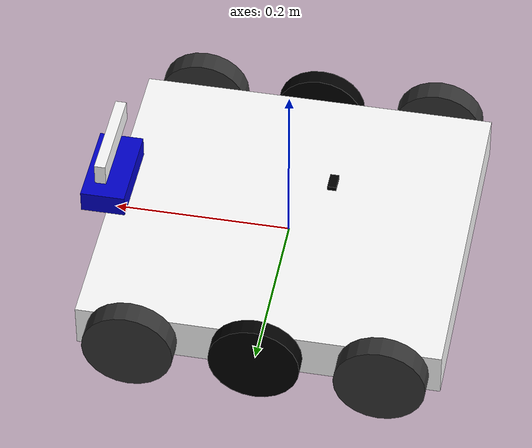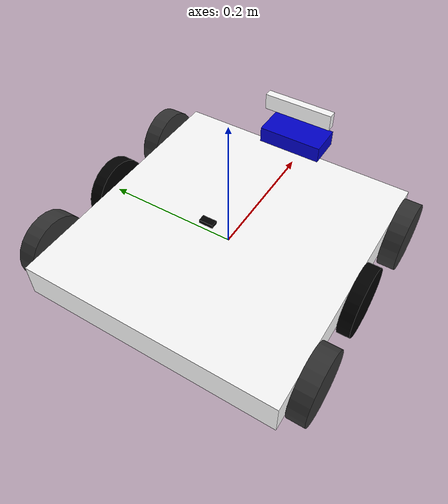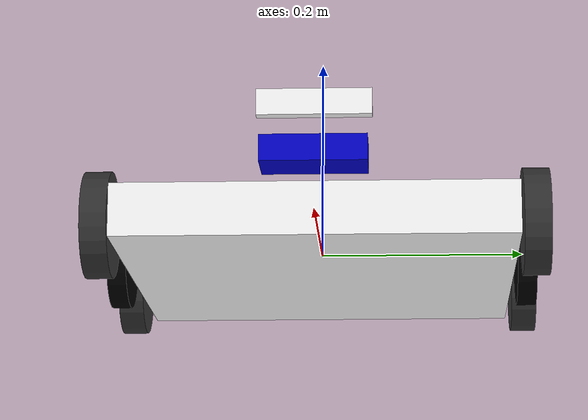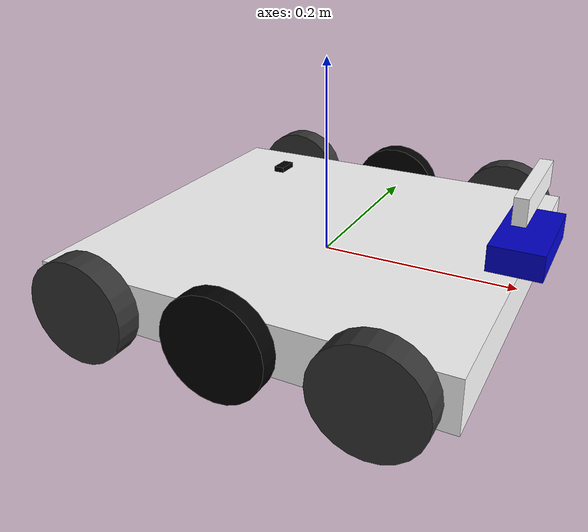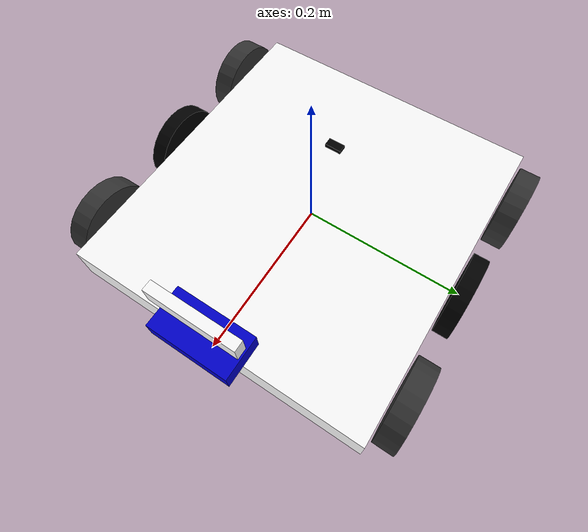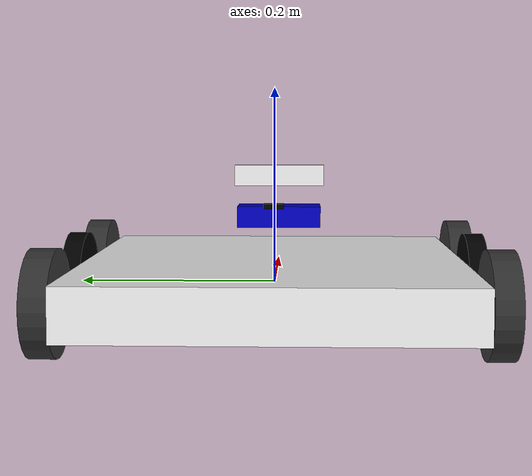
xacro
<?xml version="1.0"?>
<robot name="metrobot_base" xmlns:xacro="http://www.ros.org/wiki/xacro">

    <!-- All measurements are in meters -->

    <!-- Drive Wheels -->
    <xacro:property name="drive_wheel_radius" value="0.0508" />
    <xacro:property name="drive_wheel_mass" value="0.01"/>
    <xacro:property name="drive_wheel_thickness" value="0.01905"/>
    <xacro:property name="drive_wheel_intertia"
                    value="${1.0/12*drive_wheel_mass*
                    (3*drive_wheel_radius*drive_wheel_radius*drive_wheel_radius +
                    drive_wheel_thickness*drive_wheel_thickness)}"/>

    <!-- distance from the edge of the base to the edge of the wheel -->
    <xacro:property name="drive_wheel_base_separation" value="0.003175"/>
    <!-- signed offset from the center of base -->
    <xacro:property name="drive_wheel_offset" value="0.0"/>
    <!-- vertical offset of wheel from the center of the chassis -->
    <xacro:property name="drive_wheel_vertical_offset" value="0.0"/>

    <!-- Omni wheels -->
    <xacro:property name="omni_wheel_radius" value="0.0508"/>
    <xacro:property name="omni_wheel_thickness" value="0.0254"/>
    <xacro:property name="omni_wheel_mass" value="0.2"/>
    <xacro:property name="omni_wheel_intertia" value="${2.0/5*omni_wheel_mass*omni_wheel_radius*omni_wheel_radius}"/>

    <!-- distance from the edge of the base to the edge of the wheel -->
    <xacro:property name="omni_wheel_base_separation" value="0.003175"/>
    <!-- offset from the edges of the base -->
    <xacro:property name="omni_wheel_offset" value="0.0508"/>
    <!-- offset from the center of the base -->
    <xacro:property name="omni_wheel_vertical_offset" value="0.0001"/>

    <!-- Base Frame -->
    <xacro:property name="base_width" value="0.4064"/>
    <xacro:property name="base_length" value="0.381"/>
    <xacro:property name="base_thickness" value="0.0508"/>
    <xacro:property name="base_mass" value="5"/>

    <xacro:include filename="$(find metrobot_description)/urdf/macros.xacro" />
    <xacro:include filename="$(find metrobot_description)/urdf/metrobot_base.gazebo" />

    <link name="base_link"/>

    <!-- Add chassis and inertial link -->
    <link name="chassis">
        <interial>
            <xacro:chassis_inertial_params/>
        </interial>
        <visual>
            <xacro:chassis_geometry/>
            <material name="white" />
        </visual>
        <collision>
            <xacro:chassis_geometry/>
        </collision>
    </link>

    <joint name="base_chassis_joint" type="fixed">
        <origin xyz="${-drive_wheel_offset} 0 0" rpy="0 0 0"/>
        <parent link="base_link"/>
        <child link="chassis"/>
    </joint>

    <!-- Add in base footprint -->
    <link name="base_footprint"/>
    <joint name="base_footprint_joint" type="fixed">
        <origin xyz="0 0 ${-drive_wheel_radius+drive_wheel_vertical_offset}" rpy="0 0 0"/>
        <parent link="base_link"/>
        <child link="base_footprint"/>
    </joint>

    <!-- Add left and right wheels -->
    <link name="left_drive_wheel">
        <inertial>
            <xacro:drive_wheel_inertial_params />
        </inertial>
        <visual>
            <xacro:drive_wheel_geometry />
            <material name="black" />
        </visual>
        <collision>
            <xacro:drive_wheel_geometry />
        </collision>
    </link>

    <joint name="left_drive_wheel_joint" type="continuous">
        <origin xyz="${drive_wheel_offset}
        ${base_length/2 + drive_wheel_base_separation + drive_wheel_thickness/2}
        ${drive_wheel_vertical_offset}" rpy="1.5708 0 0" />
        <parent link="chassis" />
        <child link="left_drive_wheel" />
        <axis xyz="0 0 -1" />
        <limit effort="10" velocity="100" />
    </joint>

    <xacro:drive_wheel_transmission name="left_drive_wheel" />

    <link name="right_drive_wheel">
        <inertial>
            <xacro:drive_wheel_inertial_params />
        </inertial>
        <visual>
            <xacro:drive_wheel_geometry />
            <material name="black" />
        </visual>
        <collision>
            <xacro:drive_wheel_geometry />
        </collision>
    </link>

    <joint name="right_drive_wheel_joint" type="continuous">
        <origin xyz="${drive_wheel_offset}
        ${-1*(base_length/2 + drive_wheel_base_separation + drive_wheel_thickness/2)}
        ${drive_wheel_vertical_offset}" rpy="1.5708 0 0" />
        <parent link="chassis" />
        <child link="right_drive_wheel" />
        <axis xyz="0 0 -1" />
        <limit effort="10" velocity="100" />
    </joint>

    <xacro:drive_wheel_transmission name="right_drive_wheel" />

    <!-- Omni wheels -->
    <link name="front_left_omni_wheel">
        <inertial>
            <xacro:omni_wheel_inertial_params />
        </inertial>
        <visual>
            <xacro:omni_wheel_geometry />
            <material name="grey" />
        </visual>
        <collision>
            <xacro:omni_wheel_geometry />
        </collision>
    </link>

    <joint name="front_left_omni_wheel_joint" type="fixed">
        <origin xyz="${base_length/2 - omni_wheel_offset}
        ${base_width/2 + omni_wheel_base_separation}
        ${omni_wheel_vertical_offset}" rpy="1.5708 0 0" />
        <parent link="chassis" />
        <child link="front_left_omni_wheel" />
    </joint>

    <link name="rear_left_omni_wheel">
        <inertial>
            <xacro:omni_wheel_inertial_params />
        </inertial>
        <visual>
            <xacro:omni_wheel_geometry />
            <material name="grey" />
        </visual>
        <collision>
            <xacro:omni_wheel_geometry />
        </collision>
    </link>

    <joint name="rear_left_omni_wheel_joint" type="fixed">
        <origin xyz="${-base_length/2 + omni_wheel_offset}
        ${base_width/2 + omni_wheel_base_separation}
        ${omni_wheel_vertical_offset}" rpy="1.5708 0 0" />
        <parent link="chassis" />
        <child link="rear_left_omni_wheel" />
    </joint>

    <link name="rear_right_omni_wheel">
        <inertial>
            <xacro:omni_wheel_inertial_params />
        </inertial>
        <visual>
            <xacro:omni_wheel_geometry />
            <material name="grey" />
        </visual>
        <collision>
            <xacro:omni_wheel_geometry />
        </collision>
    </link>

    <joint name="rear_right_omni_wheel_joint" type="fixed">
        <origin xyz="${-base_length/2 + omni_wheel_offset}
        ${-base_width/2 - omni_wheel_base_separation}
        ${omni_wheel_vertical_offset}" rpy="1.5708 0 0" />
        <parent link="chassis" />
        <child link="rear_right_omni_wheel" />
    </joint>

    <link name="front_right_omni_wheel">
        <inertial>
            <xacro:omni_wheel_inertial_params />
        </inertial>
        <visual>
            <xacro:omni_wheel_geometry />
            <material name="grey" />
        </visual>
        <collision>
            <xacro:omni_wheel_geometry />
        </collision>
    </link>

    <joint name="front_right_omni_wheel_joint" type="fixed">
        <origin xyz="${base_length/2 - omni_wheel_offset}
        ${-base_width/2 - omni_wheel_base_separation}
        ${omni_wheel_vertical_offset}" rpy="1.5708 0 0" />
        <parent link="chassis" />
        <child link="front_right_omni_wheel" />
    </joint>

    <!-- IMU -->
    <link name="imu_link">
        <visual>
            <geometry>
                <box size="0.001 0.002 0.0005" />
            </geometry>
            <material name="black" />
        </visual>
    </link>
    <joint name="chassis_imu_joint" type="fixed">
        <origin xyz="0.0 0.00 0.08" rpy="0 0 0" />
        <parent link="chassis" />
        <child link="imu_link" />
    </joint>
    <gazebo reference="imu_link">
        <sensor name="metrobot_imu" type="imu">
            <always_on>true</always_on>
            <update_rate>100</update_rate>
            <imu>
                <angular_velocity>
                    <x>
                        <noise type="gaussian">
                            <mean>0.0</mean>
                            <stddev>2e-4</stddev>
                        </noise>
                    </x>
                    <y>
                        <noise type="gaussian">
                            <mean>0.0</mean>
                            <stddev>2e-4</stddev>
                        </noise>
                    </y>
                    <z>
                        <noise type="gaussian">
                            <mean>0.0</mean>
                            <stddev>2e-4</stddev>
                        </noise>
                    </z>
                </angular_velocity>
                <linear_acceleration>
                    <x>
                        <noise type="gaussian">
                            <mean>0.0</mean>
                            <stddev>1.7e-2</stddev>
                        </noise>
                    </x>
                    <y>
                        <noise type="gaussian">
                            <mean>0.0</mean>
                            <stddev>1.7e-2</stddev>
                        </noise>
                    </y>
                    <z>
                        <noise type="gaussian">
                            <mean>0.0</mean>
                            <stddev>1.7e-2</stddev>
                        </noise>
                    </z>
                </linear_acceleration>
            </imu>
            <plugin name="bytes_imu" filename="libgazebo_ros_imu_sensor.so">
                <ros>
                    <namespace>imu</namespace>
                    <remapping>~/out:=data</remapping>
                </ros>
                <initial_orientation_as_reference>false</initial_orientation_as_reference>
            </plugin>
        </sensor>
    </gazebo>

    <!-- GPS -->
    <link name="gps_link">
        <visual>
            <geometry>
                <box size="0.01 0.02 0.005" />
            </geometry>
            <material name="black" />
        </visual>
    </link>
    <joint name="chassis_gps_joint" type="fixed">
        <origin xyz="-0.05 0.0 0.0825" rpy="0 0 0" />
        <parent link="chassis" />
        <child link="gps_link" />
    </joint>
    <gazebo reference="gps_link">
        <sensor name="gps_sensor" type="gps">
            <always_on>true</always_on>
            <update_rate>1.0</update_rate>
            <plugin name="gps_controller" filename="libgazebo_ros_gps_sensor.so">
                <ros>
                    <remapping>gps_controller/out:=gps</remapping>
                </ros>
                <frame_name>gps_link</frame_name>
            </plugin>
        </sensor>
        <material>Gazebo/Grey</material>
    </gazebo>

    <!-- Main cameras - left camera is used for main camera feed, right camera is used for stereo (camera are approximately 200mm appart) -->

<!--     Intel Realense T265 + D435-->
<!--     D435 is about 0.2 meters above the ground-->
    <xacro:depth name="d430" x="${base_width/2}" y="0" z="${base_thickness}" r="0" p="0" yaw="0" parent="chassis"/>

    <link name="t260_link">
        <visual>
            <origin xyz="0 0 0" rpy="0 0 0" />
            <geometry>
                <box size="0.0125 0.108 0.025" />
            </geometry>
            <material name="white" />
        </visual>
    </link>
    <joint name="chassis_t260_joint" type="fixed">
        <!-- Rotate 54.1 deg off vertical -->
        <origin xyz="${base_width/2} 0 0.1" rpy="0 0.0 0" />
        <parent link="chassis" />
        <child link="t260_link" />
    </joint>

</robot>

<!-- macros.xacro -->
<!-- Sensor Examples https://github.com/ros-simulation/gazebo_ros_pkgs/tree/ros2/gazebo_plugins -->
<robot name="metrobot" xmlns:xacro="http://www.ros.org/wiki/xacro">
    <!-- https://en.wikipedia.org/wiki/List_of_moments_of_inertia -->

    <xacro:macro name="chassis_inertial_params">
        <origin xyz="0.1477 0 0" rpy="0 0 0" />
        <mass value="${base_mass}" />
        <inertia ixx="${1.0/12*base_mass*(base_thickness*base_thickness + base_width*base_width)}" ixy="0" ixz="0"
                 iyy="${1.0/12*base_mass*(base_length*base_length + base_width*base_width)}"   iyz="0"
                 izz="${1.0/12*base_mass*(base_thickness*base_thickness + base_length*base_length)}" />
    </xacro:macro>

    <xacro:macro name="drive_wheel_inertial_params">
        <origin xyz="0 0 -0.0225" rpy="0 0 0" />
        <mass value="${drive_wheel_mass}" />
        <inertia ixx="${drive_wheel_mass}" ixy="0"          ixz="0"
                 iyy="${drive_wheel_mass}" iyz="0"
                 izz="${drive_wheel_mass}" />
    </xacro:macro>

    <xacro:macro name="omni_wheel_inertial_params">
        <origin xyz="0 0 -0.0225" rpy="0 0 0" />
        <mass value="${omni_wheel_mass}" />
        <inertia ixx="${omni_wheel_mass}" ixy="0"          ixz="0"
                 iyy="${omni_wheel_mass}" iyz="0"
                 izz="${omni_wheel_mass}" />
    </xacro:macro>

    <xacro:macro name="chassis_geometry">
        <origin xyz="0 0 0" rpy="0 0 0" />
        <geometry>
            <box size="${base_width} ${base_length} ${base_thickness}" />
        </geometry>
    </xacro:macro>

    <xacro:macro name="drive_wheel_geometry">
        <origin xyz="0 0 0" rpy="0 0 0" />
        <geometry>
            <cylinder radius="${drive_wheel_radius}" length="${drive_wheel_thickness}" />
        </geometry>
    </xacro:macro>

    <xacro:macro name="omni_wheel_geometry">
        <origin xyz="0 0 0" rpy="0 0 0" />
        <geometry>
            <cylinder radius="${omni_wheel_radius}" length="${omni_wheel_thickness}" />
        </geometry>
    </xacro:macro>

    <!-- transmission macros -->

    <xacro:macro name="drive_wheel_transmission" params="name">
        <transmission name="${name}_transmission" type="SimpleTransmission">
            <type>transmission_interface/SimpleTransmission</type>
            <joint name="${name}_joint">
                <hardwareInterface>hardware_interface/VelocityJointInterface</hardwareInterface>
            </joint>
            <actuator name="${name}_motor">
                <hardwareInterface>hardware_interface/VelocityJointInterface</hardwareInterface>
                <mechanicalReduction>1</mechanicalReduction>
            </actuator>
        </transmission>
    </xacro:macro>

    <!-- Sensor macros -->

    <xacro:macro name="camera_sensor" params="name x y z r p yaw parent">
        <link name="${name}_link">
            <origin xyz="0 0 0" rpy="0 0 0"/>
            <visual>
                <origin xyz="0 0 0" rpy="0 0 0"/>
                <geometry>
                    <box size="0.05 0.05 0.05"/>
                </geometry>
                <material name="green"/>
            </visual>
        </link>

        <joint name="${name}_joint" type="fixed">
            <origin xyz="${x} ${y} ${z}" rpy="${r} ${p} ${yaw}"/> <!-- +z should point into the plane of the image  -->
            <parent link="${parent}"/>
            <child link="${name}_link"/>
        </joint>

        <!-- need an optical joint to make the camera spec work -->
        <joint name="${name}_optical_joint" type="fixed">
            <!-- these values have to be these values otherwise the gazebo camera
            image won't be aligned properly with the frame it is supposedly
            originating from -->
            <origin xyz="0 0 0" rpy="${-pi/2} 0 ${-pi/2}"/>
            <parent link="${name}_link"/>
            <child link="${name}_link_optical"/>
        </joint>

        <link name="${name}_link_optical"/>

        <gazebo reference="${name}_link">
            <sensor type="camera" name="${name}">
                <always_on>true</always_on>
                <update_rate>15.0</update_rate>
                <camera name="${name}">
                    <horizontal_fov>1.46608</horizontal_fov>
                    <image>
                        <width>320</width>
                        <height>180</height>
                        <format>R8G8B8</format>
                    </image>
                    <distortion>
                        <k1>0.0</k1>
                        <k2>0.0</k2>
                        <k3>0.0</k3>
                        <p1>0.0</p1>
                        <p2>0.0</p2>
                        <center>0.5 0.5</center>
                    </distortion>
                </camera>
                <plugin name="plugin_name" filename="libgazebo_ros_camera.so">
                    <ros>
                        <remapping>~/image_raw:=image_raw</remapping>
                        <remapping>~/camera_info:=camera_info</remapping>
                    </ros>
                    <!-- Set camera name. If empty, defaults to sensor name (i.e. "sensor_name") -->
                    <camera_name>${name}</camera_name>
                    <!-- Set TF frame name. If empty, defaults to link name (i.e. "link_name") -->
                    <frame_name>${name}_link_optical</frame_name>
                    <hack_baseline>0.2</hack_baseline>
                </plugin>
            </sensor>
            <material>Gazebo/Green</material>
        </gazebo>
    </xacro:macro>

    <xacro:macro name="depth" params="name x y z r p yaw parent">

        <link name="${name}_link">
            <origin xyz="0 0 0" rpy="0 0 0"/>
            <visual>
                <origin xyz="0 0 0" rpy="0 0 0"/>
                <geometry>
                    <box size="0.05 0.1 0.025"/>
                </geometry>
                <material name="blue"/>
            </visual>
        </link>
        <gazebo reference="${name}_link">
            <material>Gazebo/Blue</material>
        </gazebo>

        <joint name="${name}_joint" type="fixed">
            <origin xyz="${x} ${y} ${z}" rpy="${r} ${p} ${yaw}"/> <!-- +z should point into the plane of the image  -->
            <parent link="${parent}"/>
            <child link="${name}_link"/>
        </joint>

        <!-- need an optical joint to make the camera spec work -->
        <joint name="${name}_optical_joint" type="fixed">
            <!-- these values have to be these values otherwise the gazebo camera
            image won't be aligned properly with the frame it is supposedly
            originating from -->
            <origin xyz="0 0 0" rpy="${-pi/2} 0 ${-pi/2}"/>
            <parent link="${name}_link"/>
            <child link="${name}_link_optical"/>
        </joint>

        <link name="${name}_link_optical"/>

        <gazebo reference="${name}_link">
            <sensor name="${name}" type="depth">
                <always_on>true</always_on>
                <update_rate>15</update_rate>
                <pose>0 0 0 0 0 0</pose>
                <camera name="realsense_depth_camera">
                    <horizontal_fov>1.46608</horizontal_fov>
                    <image>
                        <width>424</width>
                        <height>240</height>
                        <format>B8G8R8</format>
                    </image>
                    <clip>
                        <near>0.05</near>
                        <far>8</far>
                    </clip>
                </camera>
                <plugin name="intel_realsense_d430_depth_driver" filename="libgazebo_ros_camera.so">
                    <ros>
                        <namespace>d430</namespace>
                        <remapping>${name}/image_raw:=color/image_raw</remapping>
                        <remapping>${name}/depth/image_raw:=depth/image_rect_raw</remapping>
                        <remapping>${name}/camera_info:=camera_info</remapping>
                        <remapping>${name}/depth/camera_info:=depth/camera_info</remapping>
                        <remapping>${name}/points:=depth/points</remapping>
                    </ros>
                    <camera_name>${name}</camera_name>
                    <frame_name>${name}_link_optical</frame_name>
                    <hack_baseline>0.07</hack_baseline>
                    <min_depth>0.05</min_depth>
                    <max_depth>8.0</max_depth>
                </plugin>
            </sensor>
        </gazebo>
    </xacro:macro>

    <!-- Add the remaining xacros -->
    <xacro:include filename="$(find metrobot_description)/urdf/materials.xacro" />

</robot>

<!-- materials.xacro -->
<robot name="metrobot" xmlns:xacro="http://www.ros.org/wiki/xacro">

    <material name="black">
        <color rgba="0.0 0.0 0.0 1.0"/>
    </material>

    <material name="blue">
        <color rgba="0.0 0.0 0.8 1.0"/>
    </material>

    <material name="green">
        <color rgba="0.0 0.8 0.0 1.0"/>
    </material>

    <material name="grey">
        <color rgba="0.2 0.2 0.2 1.0"/>
    </material>

    <material name="orange">
        <color rgba="${255/255} ${108/255} ${10/255} 1.0"/>
    </material>

    <material name="brown">
        <color rgba="${222/255} ${207/255} ${195/255} 1.0"/>
    </material>

    <material name="red">
        <color rgba="0.8 0.0 0.0 1.0"/>
    </material>

    <material name="white">
        <color rgba="1.0 1.0 1.0 1.0"/>
    </material>

</robot>
